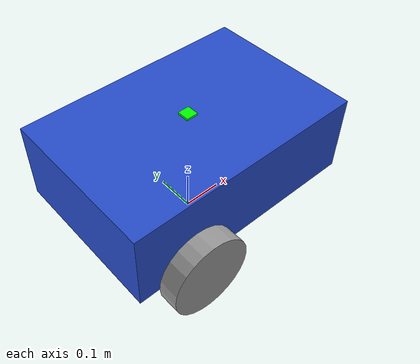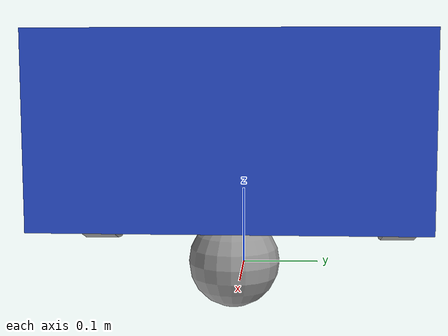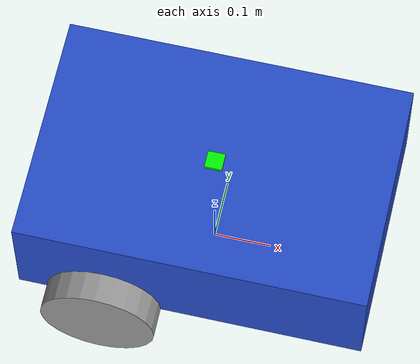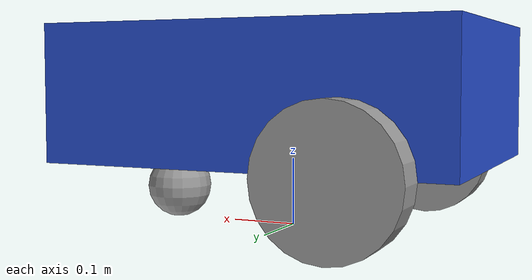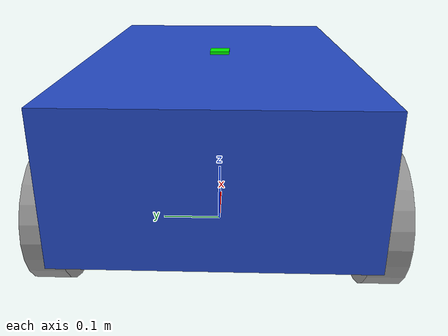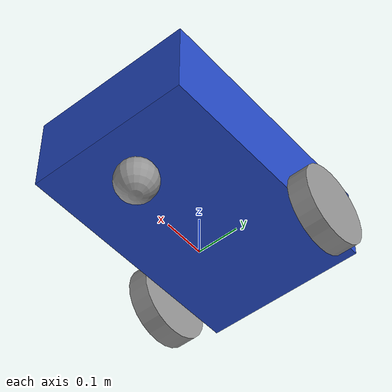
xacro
<?xml version="1.0"?>
<robot xmlns:xacro="http://www.ros.org/wiki/xacro">

    <!-- ==================== ROBOT DIMENSIONS ==================== -->
    <!-- TODO: Update these values with actual measurements from your robot -->
    <xacro:property name="base_length" value="0.6" />      <!-- meters (front to back) -->
    <xacro:property name="base_width" value="0.4" />       <!-- meters (side to side, excluding wheels) -->
    <xacro:property name="base_height" value="0.2" />      <!-- meters -->
    <xacro:property name="base_mass" value="5.0" />        <!-- kg -->

    <xacro:property name="wheel_radius" value="0.1" />     <!-- meters -->
    <xacro:property name="wheel_length" value="0.05" />    <!-- meters (wheel width) -->
    <xacro:property name="wheel_mass" value="0.5" />       <!-- kg -->

    <!-- Calculated wheel separation (center to center) -->
    <xacro:property name="wheel_separation" value="${base_width + wheel_length}" />

    <!-- ==================== BASE FOOTPRINT ==================== -->
    <link name="base_footprint" />

    <!-- ==================== BASE LINK ==================== -->
    <link name="base_link">
        <visual>
            <geometry>
                <box size="${base_length} ${base_width} ${base_height}" />
            </geometry>
            <origin xyz="0 0 ${base_height / 2.0}" rpy="0 0 0" />
            <material name="blue" />
        </visual>
        <collision>
            <geometry>
                <box size="${base_length} ${base_width} ${base_height}" />
            </geometry>
            <origin xyz="0 0 ${base_height / 2.0}" rpy="0 0 0" />
        </collision>
        <inertial>
            <mass value="${base_mass}" />
            <origin xyz="0 0 ${base_height / 2.0}" rpy="0 0 0" />
            <inertia ixx="${(1/12) * base_mass * (base_width*base_width + base_height*base_height)}"
                     ixy="0" ixz="0"
                     iyy="${(1/12) * base_mass * (base_length*base_length + base_height*base_height)}"
                     iyz="0"
                     izz="${(1/12) * base_mass * (base_length*base_length + base_width*base_width)}" />
        </inertial>
    </link>

    <!-- ==================== WHEEL MACRO ==================== -->
    <xacro:macro name="wheel_link" params="prefix">
        <link name="${prefix}_wheel_link">
            <visual>
                <geometry>
                    <cylinder radius="${wheel_radius}" length="${wheel_length}" />
                </geometry>
                <origin xyz="0 0 0" rpy="${pi / 2.0} 0 0" />
                <material name="grey" />
            </visual>
            <collision>
                <geometry>
                    <cylinder radius="${wheel_radius}" length="${wheel_length}" />
                </geometry>
                <origin xyz="0 0 0" rpy="${pi / 2.0} 0 0" />
            </collision>
            <inertial>
                <mass value="${wheel_mass}" />
                <origin xyz="0 0 0" rpy="${pi / 2.0} 0 0" />
                <inertia ixx="${(1/12) * wheel_mass * (3*wheel_radius*wheel_radius + wheel_length*wheel_length)}"
                         ixy="0" ixz="0"
                         iyy="${(1/12) * wheel_mass * (3*wheel_radius*wheel_radius + wheel_length*wheel_length)}"
                         iyz="0"
                         izz="${(1/2) * wheel_mass * wheel_radius*wheel_radius}" />
            </inertial>
        </link>
    </xacro:macro>

    <xacro:wheel_link prefix="right" />
    <xacro:wheel_link prefix="left" />

    <!-- ==================== CASTER WHEEL ==================== -->
    <link name="caster_wheel_link">
        <visual>
            <geometry>
                <sphere radius="${wheel_radius / 2.0}" />
            </geometry>
            <origin xyz="0 0 0" rpy="0 0 0" />
            <material name="grey" />
        </visual>
        <collision>
            <geometry>
                <sphere radius="${wheel_radius / 2.0}" />
            </geometry>
            <origin xyz="0 0 0" rpy="0 0 0" />
        </collision>
        <inertial>
            <mass value="0.2" />
            <origin xyz="0 0 0" rpy="0 0 0" />
            <inertia ixx="0.0001" ixy="0" ixz="0" iyy="0.0001" iyz="0" izz="0.0001" />
        </inertial>
    </link>

    <!-- ==================== IMU LINK ==================== -->
    <link name="imu_link">
        <visual>
            <geometry>
                <box size="0.03 0.03 0.01" />
            </geometry>
            <origin xyz="0 0 0" rpy="0 0 0" />
            <material name="green">
                <color rgba="0 1 0 1" />
            </material>
        </visual>
        <collision>
            <geometry>
                <box size="0.03 0.03 0.01" />
            </geometry>
        </collision>
        <inertial>
            <mass value="0.01" />
            <inertia ixx="0.000001" ixy="0" ixz="0" iyy="0.000001" iyz="0" izz="0.000001" />
        </inertial>
    </link>

    <!-- ==================== JOINTS ==================== -->
    <joint name="base_joint" type="fixed">
        <parent link="base_footprint" />
        <child link="base_link" />
        <origin xyz="0 0 ${wheel_radius}" rpy="0 0 0"/>
    </joint>

    <joint name="base_right_wheel_joint" type="continuous">
        <parent link="base_link" />
        <child link="right_wheel_link" />
        <origin xyz="${-base_length / 4.0} ${-(base_width + wheel_length) / 2.0} 0" rpy="0 0 0" />
        <axis xyz="0 1 0" />
    </joint>

    <joint name="base_left_wheel_joint" type="continuous">
        <parent link="base_link" />
        <child link="left_wheel_link" />
        <origin xyz="${-base_length / 4.0} ${(base_width + wheel_length) / 2.0} 0" rpy="0 0 0" />
        <axis xyz="0 1 0" />
    </joint>

    <joint name="base_caster_wheel_joint" type="fixed">
        <parent link="base_link" />
        <child link="caster_wheel_link" />
        <origin xyz="${base_length / 3.0} 0 ${-wheel_radius / 2.0}" rpy="0 0 0" />
    </joint>

    <!-- IMU mounted on top of base_link -->
    <!-- TODO: Adjust xyz to match actual IMU position on your robot -->
    <joint name="imu_joint" type="fixed">
        <parent link="base_link" />
        <child link="imu_link" />
        <origin xyz="0 0 ${base_height}" rpy="0 0 0" />
    </joint>

</robot>
